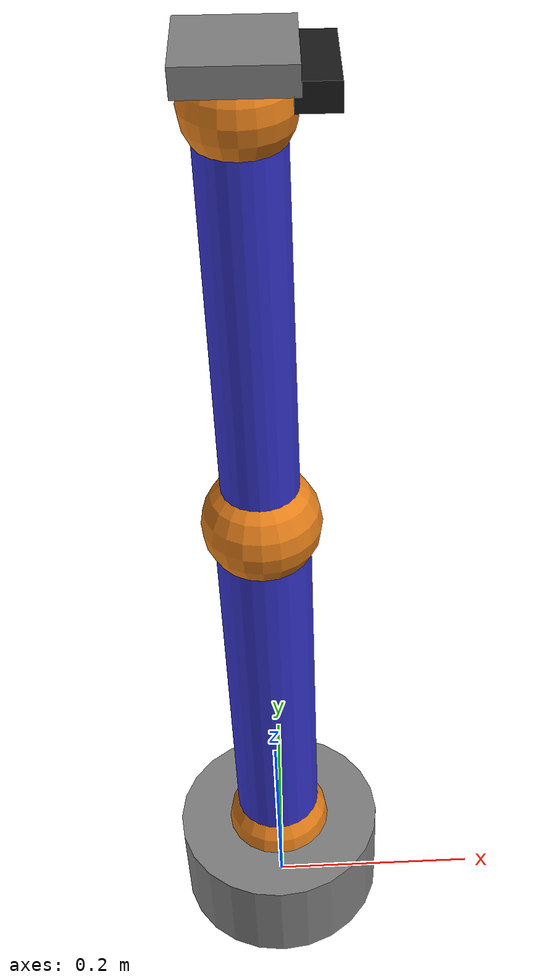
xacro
<?xml version="1.0"?>
<robot xmlns:xacro="http://www.ros.org/wiki/xacro" name="arm_robot">

  <!-- Properties -->
  <xacro:property name="link1_length" value="0.4"/>
  <xacro:property name="link2_length" value="0.35"/>
  <xacro:property name="link_radius" value="0.04"/>
  <xacro:property name="joint_radius" value="0.05"/>

  <!-- Materials -->
  <material name="blue">
    <color rgba="0.2 0.2 0.8 1.0"/>
  </material>
  <material name="orange">
    <color rgba="0.9 0.5 0.1 1.0"/>
  </material>
  <material name="grey">
    <color rgba="0.5 0.5 0.5 1.0"/>
  </material>
  <material name="black">
    <color rgba="0.1 0.1 0.1 1.0"/>
  </material>

  <!-- World link (fixed) -->
  <link name="world"/>

  <!-- Base link -->
  <link name="base_link">
    <visual>
      <geometry>
        <cylinder length="0.1" radius="0.1"/>
      </geometry>
      <origin xyz="0 0 0.05" rpy="0 0 0"/>
      <material name="grey"/>
    </visual>
    <collision>
      <geometry>
        <cylinder length="0.1" radius="0.1"/>
      </geometry>
      <origin xyz="0 0 0.05" rpy="0 0 0"/>
    </collision>
    <inertial>
      <mass value="5.0"/>
      <inertia ixx="0.01" ixy="0" ixz="0" iyy="0.01" iyz="0" izz="0.01"/>
    </inertial>
  </link>

  <joint name="world_to_base" type="fixed">
    <parent link="world"/>
    <child link="base_link"/>
    <origin xyz="0 0 0" rpy="0 0 0"/>
  </joint>

  <!-- Shoulder joint (rotates around Z) -->
  <link name="shoulder_link">
    <visual>
      <geometry>
        <sphere radius="${joint_radius}"/>
      </geometry>
      <material name="orange"/>
    </visual>
    <collision>
      <geometry>
        <sphere radius="${joint_radius}"/>
      </geometry>
    </collision>
    <inertial>
      <mass value="1.0"/>
      <inertia ixx="0.001" ixy="0" ixz="0" iyy="0.001" iyz="0" izz="0.001"/>
    </inertial>
  </link>

  <joint name="shoulder_pan_joint" type="revolute">
    <parent link="base_link"/>
    <child link="shoulder_link"/>
    <origin xyz="0 0 0.1" rpy="0 0 0"/>
    <axis xyz="0 0 1"/>
    <limit lower="-3.14" upper="3.14" effort="100" velocity="1.0"/>
  </joint>

  <!-- Upper arm (link 1) -->
  <link name="upper_arm_link">
    <visual>
      <geometry>
        <cylinder length="${link1_length}" radius="${link_radius}"/>
      </geometry>
      <origin xyz="0 0 ${link1_length/2}" rpy="0 0 0"/>
      <material name="blue"/>
    </visual>
    <collision>
      <geometry>
        <cylinder length="${link1_length}" radius="${link_radius}"/>
      </geometry>
      <origin xyz="0 0 ${link1_length/2}" rpy="0 0 0"/>
    </collision>
    <inertial>
      <mass value="2.0"/>
      <origin xyz="0 0 ${link1_length/2}"/>
      <inertia ixx="0.02" ixy="0" ixz="0" iyy="0.02" iyz="0" izz="0.001"/>
    </inertial>
  </link>

  <joint name="shoulder_lift_joint" type="revolute">
    <parent link="shoulder_link"/>
    <child link="upper_arm_link"/>
    <origin xyz="0 0 0" rpy="0 0 0"/>
    <axis xyz="0 1 0"/>
    <limit lower="-1.57" upper="1.57" effort="100" velocity="1.0"/>
  </joint>

  <!-- Elbow joint -->
  <link name="elbow_link">
    <visual>
      <geometry>
        <sphere radius="${joint_radius}"/>
      </geometry>
      <material name="orange"/>
    </visual>
    <collision>
      <geometry>
        <sphere radius="${joint_radius}"/>
      </geometry>
    </collision>
    <inertial>
      <mass value="0.5"/>
      <inertia ixx="0.0005" ixy="0" ixz="0" iyy="0.0005" iyz="0" izz="0.0005"/>
    </inertial>
  </link>

  <joint name="elbow_joint" type="revolute">
    <parent link="upper_arm_link"/>
    <child link="elbow_link"/>
    <origin xyz="0 0 ${link1_length}" rpy="0 0 0"/>
    <axis xyz="0 1 0"/>
    <limit lower="-2.5" upper="2.5" effort="100" velocity="1.0"/>
  </joint>

  <!-- Forearm (link 2) -->
  <link name="forearm_link">
    <visual>
      <geometry>
        <cylinder length="${link2_length}" radius="${link_radius * 0.8}"/>
      </geometry>
      <origin xyz="0 0 ${link2_length/2}" rpy="0 0 0"/>
      <material name="blue"/>
    </visual>
    <collision>
      <geometry>
        <cylinder length="${link2_length}" radius="${link_radius * 0.8}"/>
      </geometry>
      <origin xyz="0 0 ${link2_length/2}" rpy="0 0 0"/>
    </collision>
    <inertial>
      <mass value="1.5"/>
      <origin xyz="0 0 ${link2_length/2}"/>
      <inertia ixx="0.01" ixy="0" ixz="0" iyy="0.01" iyz="0" izz="0.0005"/>
    </inertial>
  </link>

  <joint name="forearm_joint" type="fixed">
    <parent link="elbow_link"/>
    <child link="forearm_link"/>
    <origin xyz="0 0 0" rpy="0 0 0"/>
  </joint>

  <!-- Wrist joint -->
  <link name="wrist_link">
    <visual>
      <geometry>
        <sphere radius="${joint_radius * 0.8}"/>
      </geometry>
      <material name="orange"/>
    </visual>
    <collision>
      <geometry>
        <sphere radius="${joint_radius * 0.8}"/>
      </geometry>
    </collision>
    <inertial>
      <mass value="0.3"/>
      <inertia ixx="0.0002" ixy="0" ixz="0" iyy="0.0002" iyz="0" izz="0.0002"/>
    </inertial>
  </link>

  <joint name="wrist_joint" type="revolute">
    <parent link="forearm_link"/>
    <child link="wrist_link"/>
    <origin xyz="0 0 ${link2_length}" rpy="0 0 0"/>
    <axis xyz="0 0 1"/>
    <limit lower="-3.14" upper="3.14" effort="50" velocity="1.5"/>
  </joint>

  <!-- End effector / gripper mount -->
  <link name="ee_link">
    <visual>
      <geometry>
        <box size="0.08 0.08 0.02"/>
      </geometry>
      <origin xyz="0 0 0.01" rpy="0 0 0"/>
      <material name="grey"/>
    </visual>
    <collision>
      <geometry>
        <box size="0.08 0.08 0.02"/>
      </geometry>
      <origin xyz="0 0 0.01" rpy="0 0 0"/>
    </collision>
    <inertial>
      <mass value="0.2"/>
      <inertia ixx="0.0001" ixy="0" ixz="0" iyy="0.0001" iyz="0" izz="0.0001"/>
    </inertial>
  </link>

  <joint name="ee_joint" type="fixed">
    <parent link="wrist_link"/>
    <child link="ee_link"/>
    <origin xyz="0 0 0.02" rpy="0 0 0"/>
  </joint>

  <!-- Camera mount -->
  <link name="camera_link">
    <visual>
      <geometry>
        <box size="0.03 0.08 0.02"/>
      </geometry>
      <material name="black"/>
    </visual>
    <collision>
      <geometry>
        <box size="0.03 0.08 0.02"/>
      </geometry>
    </collision>
    <inertial>
      <mass value="0.1"/>
      <inertia ixx="0.00001" ixy="0" ixz="0" iyy="0.00001" iyz="0" izz="0.00001"/>
    </inertial>
  </link>

  <joint name="camera_joint" type="fixed">
    <parent link="ee_link"/>
    <child link="camera_link"/>
    <origin xyz="0.05 0 0" rpy="0 0 0"/>  <!-- Camera points same direction as gripper -->
  </joint>

  <!-- Camera optical frame (Z forward, X right, Y down - standard camera convention) -->
  <link name="camera_optical_frame"/>

  <joint name="camera_optical_joint" type="fixed">
    <parent link="camera_link"/>
    <child link="camera_optical_frame"/>
    <origin xyz="0 0 0" rpy="-1.5708 0 -1.5708"/>
  </joint>

  <!-- Gazebo camera plugin -->
  <gazebo reference="camera_link">
    <sensor type="camera" name="arm_camera">
      <update_rate>30.0</update_rate>
      <camera name="head">
        <horizontal_fov>1.3962634</horizontal_fov>
        <image>
          <width>640</width>
          <height>480</height>
          <format>R8G8B8</format>
        </image>
        <clip>
          <near>0.02</near>
          <far>300</far>
        </clip>
        <noise>
          <type>gaussian</type>
          <mean>0.0</mean>
          <stddev>0.007</stddev>
        </noise>
      </camera>
      <plugin name="camera_controller" filename="libgazebo_ros_camera.so">
        <ros>
          <namespace>/</namespace>
        </ros>
        <camera_name>camera</camera_name>
        <frame_name>camera_optical_frame</frame_name>
      </plugin>
    </sensor>
    <material>Gazebo/Black</material>
  </gazebo>

  <!-- ros2_control hardware interface -->
  <ros2_control name="GazeboSystem" type="system">
    <hardware>
      <plugin>gazebo_ros2_control/GazeboSystem</plugin>
    </hardware>
    <joint name="shoulder_pan_joint">
      <command_interface name="position">
        <param name="min">-3.14</param>
        <param name="max">3.14</param>
      </command_interface>
      <state_interface name="position"/>
      <state_interface name="velocity"/>
    </joint>
    <joint name="shoulder_lift_joint">
      <command_interface name="position">
        <param name="min">-1.57</param>
        <param name="max">1.57</param>
      </command_interface>
      <state_interface name="position"/>
      <state_interface name="velocity"/>
    </joint>
    <joint name="elbow_joint">
      <command_interface name="position">
        <param name="min">-2.5</param>
        <param name="max">2.5</param>
      </command_interface>
      <state_interface name="position"/>
      <state_interface name="velocity"/>
    </joint>
    <joint name="wrist_joint">
      <command_interface name="position">
        <param name="min">-3.14</param>
        <param name="max">3.14</param>
      </command_interface>
      <state_interface name="position"/>
      <state_interface name="velocity"/>
    </joint>
  </ros2_control>

  <!-- Gazebo ros2_control plugin -->
  <gazebo>
    <plugin filename="libgazebo_ros2_control.so" name="gazebo_ros2_control">
      <parameters>$(find robot_description)/config/controllers.yaml</parameters>
    </plugin>
  </gazebo>

  <!-- Gazebo colors -->
  <gazebo reference="base_link">
    <material>Gazebo/Grey</material>
  </gazebo>
  <gazebo reference="shoulder_link">
    <material>Gazebo/Orange</material>
  </gazebo>
  <gazebo reference="upper_arm_link">
    <material>Gazebo/Blue</material>
  </gazebo>
  <gazebo reference="elbow_link">
    <material>Gazebo/Orange</material>
  </gazebo>
  <gazebo reference="forearm_link">
    <material>Gazebo/Blue</material>
  </gazebo>
  <gazebo reference="wrist_link">
    <material>Gazebo/Orange</material>
  </gazebo>
  <gazebo reference="ee_link">
    <material>Gazebo/Grey</material>
  </gazebo>

</robot>
